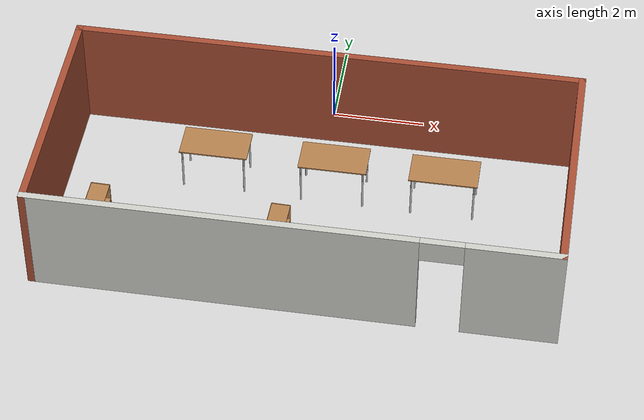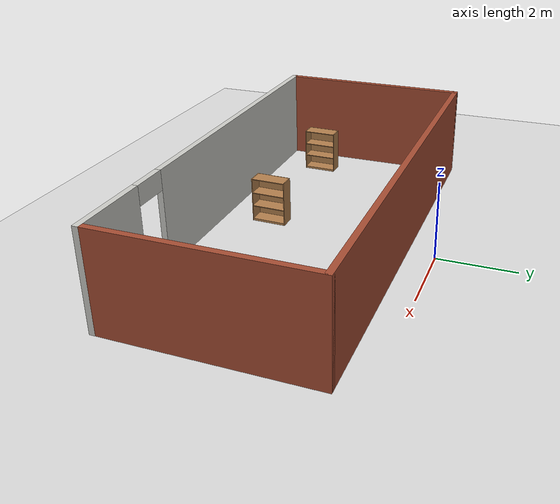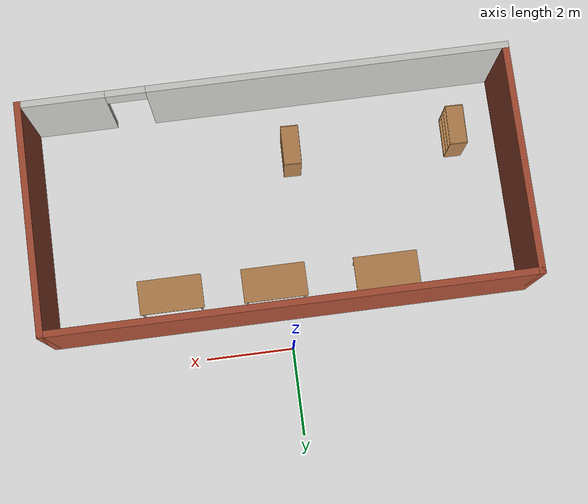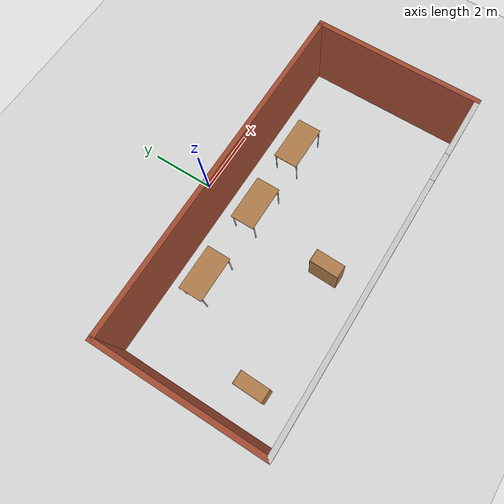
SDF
<sdf version="1.7">
 <world name="default">
  <light name="sun" type="directional">
   <pose>0 0 10 0 -0 0</pose>
   <diffuse>0.8 0.8 0.8 1</diffuse>
   <specular>0.2 0.2 0.2 1</specular>
   <attenuation>
    <range>1000</range>
    <constant>0.9</constant>
    <linear>0.01</linear>
    <quadratic>0.001</quadratic>
   </attenuation>
   <direction>-0.5 0.1 -0.9</direction>
   <spot><inner_angle>0</inner_angle><outer_angle>0</outer_angle><falloff>0</falloff></spot>
  </light>
  <model name="ground_plane">
   <static>1</static>
   <link name="link">
    <collision name="collision">
     <geometry><plane><normal>0 0 1</normal><size>100 100</size></plane></geometry>
     <surface><friction><ode><mu>100</mu><mu2>50</mu2></ode></friction></surface>
    </collision>
    <visual name="visual">
     <cast_shadows>0</cast_shadows>
     <geometry><plane><normal>0 0 1</normal><size>100 100</size></plane></geometry>
     <material>
      <script><uri>file://media/materials/scripts/gazebo.material</uri><name>Gazebo/Grey</name></script>
     </material>
    </visual>
   </link>
  </model>
  <gravity>0 0 -9.8</gravity>
  <magnetic_field>6e-06 2.3e-05 -4.2e-05</magnetic_field>
  <atmosphere type="adiabatic"/>
  <physics type="ode">
   <max_step_size>0.001</max_step_size>
   <real_time_factor>1</real_time_factor>
   <real_time_update_rate>1000</real_time_update_rate>
  </physics>
  <scene><ambient>0.4 0.4 0.4 1</ambient><background>0.7 0.7 0.7 1</background><shadows>1</shadows></scene>
  <audio><device>default</device></audio>
  <spherical_coordinates>
   <surface_model>EARTH_WGS84</surface_model>
   <latitude_deg>0</latitude_deg>
   <longitude_deg>0</longitude_deg>
   <elevation>0</elevation>
   <heading_deg>0</heading_deg>
  </spherical_coordinates>
  <model name="library">
   <pose>-0.045 -2.9675 0 0 -0 0</pose>
   <link name="Wall_0">
    <collision name="Wall_0_Collision">
     <geometry><box><size>11 0.15 2.5</size></box></geometry>
     <pose>0 0 1.25 0 -0 0</pose>
    </collision>
    <visual name="Wall_0_Visual">
     <pose>0 0 1.25 0 -0 0</pose>
     <geometry><box><size>11 0.15 2.5</size></box></geometry>
     <material>
      <script><uri>file://media/materials/scripts/gazebo.material</uri><name>Gazebo/Bricks</name></script>
      <ambient>1 1 1 1</ambient>
     </material>
     <meta><layer>0</layer></meta>
    </visual>
    <pose>-0 2.2075 0 0 -0 0</pose>
   </link>
   <link name="Wall_1">
    <collision name="Wall_1_Collision">
     <geometry><box><size>5.25 0.15 2.5</size></box></geometry>
     <pose>0 0 1.25 0 -0 0</pose>
    </collision>
    <visual name="Wall_1_Visual">
     <pose>0 0 1.25 0 -0 0</pose>
     <geometry><box><size>5.25 0.15 2.5</size></box></geometry>
     <material>
      <script><uri>file://media/materials/scripts/gazebo.material</uri><name>Gazebo/Bricks</name></script>
      <ambient>1 1 1 1</ambient>
     </material>
     <meta><layer>0</layer></meta>
    </visual>
    <pose>5.425 -0.3425 0 0 -0 -1.5708</pose>
   </link>
   <link name="Wall_2">
    <pose>-0 -2.8925 0 0 -0 3.14159</pose>
    <visual name="Wall_2_Visual_0">
     <pose>-4.49689 0 1.25 0 -0 0</pose>
     <geometry><box><size>2.00622 0.15 2.5</size></box></geometry>
     <material>
      <script><uri>file://media/materials/scripts/gazebo.material</uri><name>Gazebo/CeilingTiled</name></script>
      <ambient>0.921569 0.807843 0.615686 1</ambient>
     </material>
     <meta><layer>0</layer></meta>
    </visual>
    <collision name="Wall_2_Collision_0">
     <geometry><box><size>2.00622 0.15 2.5</size></box></geometry>
     <pose>-4.49689 0 1.25 0 -0 0</pose>
    </collision>
    <visual name="Wall_2_Visual_1">
     <pose>1.45311 0 1.25 0 -0 0</pose>
     <geometry><box><size>8.09378 0.15 2.5</size></box></geometry>
     <material>
      <script><uri>file://media/materials/scripts/gazebo.material</uri><name>Gazebo/CeilingTiled</name></script>
      <ambient>0.921569 0.807843 0.615686 1</ambient>
     </material>
     <meta><layer>0</layer></meta>
    </visual>
    <collision name="Wall_2_Collision_1">
     <geometry><box><size>8.09378 0.15 2.5</size></box></geometry>
     <pose>1.45311 0 1.25 0 -0 0</pose>
    </collision>
    <visual name="Wall_2_Visual_2">
     <pose>-3.04378 0 2.25 0 -0 0</pose>
     <geometry><box><size>0.9 0.15 0.5</size></box></geometry>
     <material>
      <script><uri>file://media/materials/scripts/gazebo.material</uri><name>Gazebo/CeilingTiled</name></script>
      <ambient>0.921569 0.807843 0.615686 1</ambient>
     </material>
     <meta><layer>0</layer></meta>
    </visual>
    <collision name="Wall_2_Collision_2">
     <geometry><box><size>0.9 0.15 0.5</size></box></geometry>
     <pose>-3.04378 0 2.25 0 -0 0</pose>
    </collision>
   </link>
   <link name="Wall_3">
    <collision name="Wall_3_Collision">
     <geometry><box><size>5.25 0.15 2.5</size></box></geometry>
     <pose>0 0 1.25 0 -0 0</pose>
    </collision>
    <visual name="Wall_3_Visual">
     <pose>0 0 1.25 0 -0 0</pose>
     <geometry><box><size>5.25 0.15 2.5</size></box></geometry>
     <material>
      <script><uri>file://media/materials/scripts/gazebo.material</uri><name>Gazebo/Bricks</name></script>
      <ambient>1 1 1 1</ambient>
     </material>
     <meta><layer>0</layer></meta>
    </visual>
    <pose>-5.425 -0.3425 0 0 -0 1.5708</pose>
   </link>
   <static>1</static>
  </model>
  <model name="bookshelf">
   <static>1</static>
   <link name="link">
    <inertial><mass>1</mass></inertial>
    <collision name="back">
     <pose>0 0.005 0.6 0 -0 0</pose>
     <geometry><box><size>0.9 0.01 1.2</size></box></geometry>
    </collision>
    <visual name="visual1">
     <pose>0 0.005 0.6 0 -0 0</pose>
     <geometry><box><size>0.9 0.01 1.2</size></box></geometry>
     <material>
      <script><uri>file://media/materials/scripts/gazebo.material</uri><name>Gazebo/Wood</name></script>
     </material>
    </visual>
    <collision name="left_side">
     <pose>0.45 -0.195 0.6 0 -0 0</pose>
     <geometry><box><size>0.02 0.4 1.2</size></box></geometry>
    </collision>
    <visual name="visual2">
     <pose>0.45 -0.195 0.6 0 -0 0</pose>
     <geometry><box><size>0.02 0.4 1.2</size></box></geometry>
     <material>
      <script><uri>file://media/materials/scripts/gazebo.material</uri><name>Gazebo/Wood</name></script>
     </material>
    </visual>
    <collision name="right_side">
     <pose>-0.45 -0.195 0.6 0 -0 0</pose>
     <geometry><box><size>0.02 0.4 1.2</size></box></geometry>
    </collision>
    <visual name="visual3">
     <pose>-0.45 -0.195 0.6 0 -0 0</pose>
     <geometry><box><size>0.02 0.4 1.2</size></box></geometry>
     <material>
      <script><uri>file://media/materials/scripts/gazebo.material</uri><name>Gazebo/Wood</name></script>
     </material>
    </visual>
    <collision name="bottom">
     <pose>0 -0.195 0.03 0 -0 0</pose>
     <geometry><box><size>0.88 0.4 0.06</size></box></geometry>
    </collision>
    <visual name="visual4">
     <pose>0 -0.195 0.03 0 -0 0</pose>
     <geometry><box><size>0.88 0.4 0.06</size></box></geometry>
     <material>
      <script><uri>file://media/materials/scripts/gazebo.material</uri><name>Gazebo/Wood</name></script>
     </material>
    </visual>
    <collision name="top">
     <pose>0 -0.195 1.19 0 -0 0</pose>
     <geometry><box><size>0.88 0.4 0.02</size></box></geometry>
    </collision>
    <visual name="visual5">
     <pose>0 -0.195 1.19 0 -0 0</pose>
     <geometry><box><size>0.88 0.4 0.02</size></box></geometry>
     <material>
      <script><uri>file://media/materials/scripts/gazebo.material</uri><name>Gazebo/Wood</name></script>
     </material>
    </visual>
    <collision name="low_shelf">
     <pose>0 -0.195 0.43 0 -0 0</pose>
     <geometry><box><size>0.88 0.4 0.02</size></box></geometry>
    </collision>
    <visual name="visual6">
     <pose>0 -0.195 0.43 0 -0 0</pose>
     <geometry><box><size>0.88 0.4 0.02</size></box></geometry>
     <material>
      <script><uri>file://media/materials/scripts/gazebo.material</uri><name>Gazebo/Wood</name></script>
     </material>
    </visual>
    <collision name="high_shelf">
     <pose>0 -0.195 0.8 0 -0 0</pose>
     <geometry><box><size>0.88 0.4 0.02</size></box></geometry>
    </collision>
    <visual name="visual7">
     <pose>0 -0.195 0.8 0 -0 0</pose>
     <geometry><box><size>0.88 0.4 0.02</size></box></geometry>
     <material>
      <script><uri>file://media/materials/scripts/gazebo.material</uri><name>Gazebo/Wood</name></script>
     </material>
    </visual>
   </link>
   <pose>-4.54777 -4.52296 0 0 -0 1.55034</pose>
  </model>
  <model name="table">
   <static>1</static>
   <link name="link">
    <collision name="surface">
     <pose>0 0 1 0 -0 0</pose>
     <geometry><box><size>1.5 0.8 0.03</size></box></geometry>
     <surface><friction><ode><mu>0.6</mu><mu2>0.6</mu2></ode></friction></surface>
    </collision>
    <visual name="visual1">
     <pose>0 0 1 0 -0 0</pose>
     <geometry><box><size>1.5 0.8 0.03</size></box></geometry>
     <material>
      <script><uri>file://media/materials/scripts/gazebo.material</uri><name>Gazebo/Wood</name></script>
     </material>
    </visual>
    <collision name="front_left_leg">
     <pose>0.68 0.38 0.5 0 -0 0</pose>
     <geometry><cylinder><radius>0.02</radius><length>1</length></cylinder></geometry>
    </collision>
    <visual name="front_left_leg">
     <pose>0.68 0.38 0.5 0 -0 0</pose>
     <geometry><cylinder><radius>0.02</radius><length>1</length></cylinder></geometry>
     <material>
      <script><uri>file://media/materials/scripts/gazebo.material</uri><name>Gazebo/Grey</name></script>
     </material>
    </visual>
    <collision name="front_right_leg">
     <pose>0.68 -0.38 0.5 0 -0 0</pose>
     <geometry><cylinder><radius>0.02</radius><length>1</length></cylinder></geometry>
    </collision>
    <visual name="front_right_leg">
     <pose>0.68 -0.38 0.5 0 -0 0</pose>
     <geometry><cylinder><radius>0.02</radius><length>1</length></cylinder></geometry>
     <material>
      <script><uri>file://media/materials/scripts/gazebo.material</uri><name>Gazebo/Grey</name></script>
     </material>
    </visual>
    <collision name="back_right_leg">
     <pose>-0.68 -0.38 0.5 0 -0 0</pose>
     <geometry><cylinder><radius>0.02</radius><length>1</length></cylinder></geometry>
    </collision>
    <visual name="back_right_leg">
     <pose>-0.68 -0.38 0.5 0 -0 0</pose>
     <geometry><cylinder><radius>0.02</radius><length>1</length></cylinder></geometry>
     <material>
      <script><uri>file://media/materials/scripts/gazebo.material</uri><name>Gazebo/Grey</name></script>
     </material>
    </visual>
    <collision name="back_left_leg">
     <pose>-0.68 0.38 0.5 0 -0 0</pose>
     <geometry><cylinder><radius>0.02</radius><length>1</length></cylinder></geometry>
    </collision>
    <visual name="back_left_leg">
     <pose>-0.68 0.38 0.5 0 -0 0</pose>
     <geometry><cylinder><radius>0.02</radius><length>1</length></cylinder></geometry>
     <material>
      <script><uri>file://media/materials/scripts/gazebo.material</uri><name>Gazebo/Grey</name></script>
     </material>
    </visual>
   </link>
   <pose>0.234628 -1.57399 -0.79942 0 -0 0</pose>
  </model>
  <model name="bookshelf_0">
   <static>1</static>
   <link name="link">
    <inertial><mass>1</mass></inertial>
    <collision name="back">
     <pose>0 0.005 0.6 0 -0 0</pose>
     <geometry><box><size>0.9 0.01 1.2</size></box></geometry>
    </collision>
    <visual name="visual1">
     <pose>0 0.005 0.6 0 -0 0</pose>
     <geometry><box><size>0.9 0.01 1.2</size></box></geometry>
     <material>
      <script><uri>file://media/materials/scripts/gazebo.material</uri><name>Gazebo/Wood</name></script>
     </material>
    </visual>
    <collision name="left_side">
     <pose>0.45 -0.195 0.6 0 -0 0</pose>
     <geometry><box><size>0.02 0.4 1.2</size></box></geometry>
    </collision>
    <visual name="visual2">
     <pose>0.45 -0.195 0.6 0 -0 0</pose>
     <geometry><box><size>0.02 0.4 1.2</size></box></geometry>
     <material>
      <script><uri>file://media/materials/scripts/gazebo.material</uri><name>Gazebo/Wood</name></script>
     </material>
    </visual>
    <collision name="right_side">
     <pose>-0.45 -0.195 0.6 0 -0 0</pose>
     <geometry><box><size>0.02 0.4 1.2</size></box></geometry>
    </collision>
    <visual name="visual3">
     <pose>-0.45 -0.195 0.6 0 -0 0</pose>
     <geometry><box><size>0.02 0.4 1.2</size></box></geometry>
     <material>
      <script><uri>file://media/materials/scripts/gazebo.material</uri><name>Gazebo/Wood</name></script>
     </material>
    </visual>
    <collision name="bottom">
     <pose>0 -0.195 0.03 0 -0 0</pose>
     <geometry><box><size>0.88 0.4 0.06</size></box></geometry>
    </collision>
    <visual name="visual4">
     <pose>0 -0.195 0.03 0 -0 0</pose>
     <geometry><box><size>0.88 0.4 0.06</size></box></geometry>
     <material>
      <script><uri>file://media/materials/scripts/gazebo.material</uri><name>Gazebo/Wood</name></script>
     </material>
    </visual>
    <collision name="top">
     <pose>0 -0.195 1.19 0 -0 0</pose>
     <geometry><box><size>0.88 0.4 0.02</size></box></geometry>
    </collision>
    <visual name="visual5">
     <pose>0 -0.195 1.19 0 -0 0</pose>
     <geometry><box><size>0.88 0.4 0.02</size></box></geometry>
     <material>
      <script><uri>file://media/materials/scripts/gazebo.material</uri><name>Gazebo/Wood</name></script>
     </material>
    </visual>
    <collision name="low_shelf">
     <pose>0 -0.195 0.43 0 -0 0</pose>
     <geometry><box><size>0.88 0.4 0.02</size></box></geometry>
    </collision>
    <visual name="visual6">
     <pose>0 -0.195 0.43 0 -0 0</pose>
     <geometry><box><size>0.88 0.4 0.02</size></box></geometry>
     <material>
      <script><uri>file://media/materials/scripts/gazebo.material</uri><name>Gazebo/Wood</name></script>
     </material>
    </visual>
    <collision name="high_shelf">
     <pose>0 -0.195 0.8 0 -0 0</pose>
     <geometry><box><size>0.88 0.4 0.02</size></box></geometry>
    </collision>
    <visual name="visual7">
     <pose>0 -0.195 0.8 0 -0 0</pose>
     <geometry><box><size>0.88 0.4 0.02</size></box></geometry>
     <material>
      <script><uri>file://media/materials/scripts/gazebo.material</uri><name>Gazebo/Wood</name></script>
     </material>
    </visual>
   </link>
   <pose>-0.721549 -4.52542 0 0 -0 1.54529</pose>
  </model>
  <model name="table_clone">
   <static>1</static>
   <link name="link">
    <collision name="surface">
     <pose>0 0 1 0 -0 0</pose>
     <geometry><box><size>1.5 0.8 0.03</size></box></geometry>
     <surface><friction><ode><mu>0.6</mu><mu2>0.6</mu2></ode></friction></surface>
    </collision>
    <visual name="visual1">
     <pose>0 0 1 0 -0 0</pose>
     <geometry><box><size>1.5 0.8 0.03</size></box></geometry>
     <material>
      <script><uri>file://media/materials/scripts/gazebo.material</uri><name>Gazebo/Wood</name></script>
     </material>
    </visual>
    <collision name="front_left_leg">
     <pose>0.68 0.38 0.5 0 -0 0</pose>
     <geometry><cylinder><radius>0.02</radius><length>1</length></cylinder></geometry>
    </collision>
    <visual name="front_left_leg">
     <pose>0.68 0.38 0.5 0 -0 0</pose>
     <geometry><cylinder><radius>0.02</radius><length>1</length></cylinder></geometry>
     <material>
      <script><uri>file://media/materials/scripts/gazebo.material</uri><name>Gazebo/Grey</name></script>
     </material>
    </visual>
    <collision name="front_right_leg">
     <pose>0.68 -0.38 0.5 0 -0 0</pose>
     <geometry><cylinder><radius>0.02</radius><length>1</length></cylinder></geometry>
    </collision>
    <visual name="front_right_leg">
     <pose>0.68 -0.38 0.5 0 -0 0</pose>
     <geometry><cylinder><radius>0.02</radius><length>1</length></cylinder></geometry>
     <material>
      <script><uri>file://media/materials/scripts/gazebo.material</uri><name>Gazebo/Grey</name></script>
     </material>
    </visual>
    <collision name="back_right_leg">
     <pose>-0.68 -0.38 0.5 0 -0 0</pose>
     <geometry><cylinder><radius>0.02</radius><length>1</length></cylinder></geometry>
    </collision>
    <visual name="back_right_leg">
     <pose>-0.68 -0.38 0.5 0 -0 0</pose>
     <geometry><cylinder><radius>0.02</radius><length>1</length></cylinder></geometry>
     <material>
      <script><uri>file://media/materials/scripts/gazebo.material</uri><name>Gazebo/Grey</name></script>
     </material>
    </visual>
    <collision name="back_left_leg">
     <pose>-0.68 0.38 0.5 0 -0 0</pose>
     <geometry><cylinder><radius>0.02</radius><length>1</length></cylinder></geometry>
    </collision>
    <visual name="back_left_leg">
     <pose>-0.68 0.38 0.5 0 -0 0</pose>
     <geometry><cylinder><radius>0.02</radius><length>1</length></cylinder></geometry>
     <material>
      <script><uri>file://media/materials/scripts/gazebo.material</uri><name>Gazebo/Grey</name></script>
     </material>
    </visual>
   </link>
   <pose>2.66158 -1.59936 -0.79942 0 -0 0</pose>
  </model>
  <model name="table_clone_0">
   <static>1</static>
   <link name="link">
    <collision name="surface">
     <pose>0 0 1 0 -0 0</pose>
     <geometry><box><size>1.5 0.8 0.03</size></box></geometry>
     <surface><friction><ode><mu>0.6</mu><mu2>0.6</mu2></ode></friction></surface>
    </collision>
    <visual name="visual1">
     <pose>0 0 1 0 -0 0</pose>
     <geometry><box><size>1.5 0.8 0.03</size></box></geometry>
     <material>
      <script><uri>file://media/materials/scripts/gazebo.material</uri><name>Gazebo/Wood</name></script>
     </material>
    </visual>
    <collision name="front_left_leg">
     <pose>0.68 0.38 0.5 0 -0 0</pose>
     <geometry><cylinder><radius>0.02</radius><length>1</length></cylinder></geometry>
    </collision>
    <visual name="front_left_leg">
     <pose>0.68 0.38 0.5 0 -0 0</pose>
     <geometry><cylinder><radius>0.02</radius><length>1</length></cylinder></geometry>
     <material>
      <script><uri>file://media/materials/scripts/gazebo.material</uri><name>Gazebo/Grey</name></script>
     </material>
    </visual>
    <collision name="front_right_leg">
     <pose>0.68 -0.38 0.5 0 -0 0</pose>
     <geometry><cylinder><radius>0.02</radius><length>1</length></cylinder></geometry>
    </collision>
    <visual name="front_right_leg">
     <pose>0.68 -0.38 0.5 0 -0 0</pose>
     <geometry><cylinder><radius>0.02</radius><length>1</length></cylinder></geometry>
     <material>
      <script><uri>file://media/materials/scripts/gazebo.material</uri><name>Gazebo/Grey</name></script>
     </material>
    </visual>
    <collision name="back_right_leg">
     <pose>-0.68 -0.38 0.5 0 -0 0</pose>
     <geometry><cylinder><radius>0.02</radius><length>1</length></cylinder></geometry>
    </collision>
    <visual name="back_right_leg">
     <pose>-0.68 -0.38 0.5 0 -0 0</pose>
     <geometry><cylinder><radius>0.02</radius><length>1</length></cylinder></geometry>
     <material>
      <script><uri>file://media/materials/scripts/gazebo.material</uri><name>Gazebo/Grey</name></script>
     </material>
    </visual>
    <collision name="back_left_leg">
     <pose>-0.68 0.38 0.5 0 -0 0</pose>
     <geometry><cylinder><radius>0.02</radius><length>1</length></cylinder></geometry>
    </collision>
    <visual name="back_left_leg">
     <pose>-0.68 0.38 0.5 0 -0 0</pose>
     <geometry><cylinder><radius>0.02</radius><length>1</length></cylinder></geometry>
     <material>
      <script><uri>file://media/materials/scripts/gazebo.material</uri><name>Gazebo/Grey</name></script>
     </material>
    </visual>
   </link>
   <pose>-2.39913 -1.51869 -0.79942 0 -0 0</pose>
  </model>
 </world>
</sdf>
